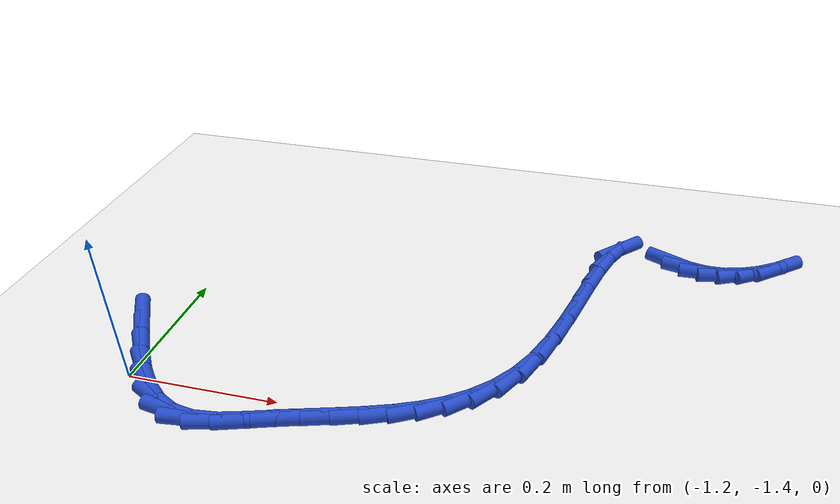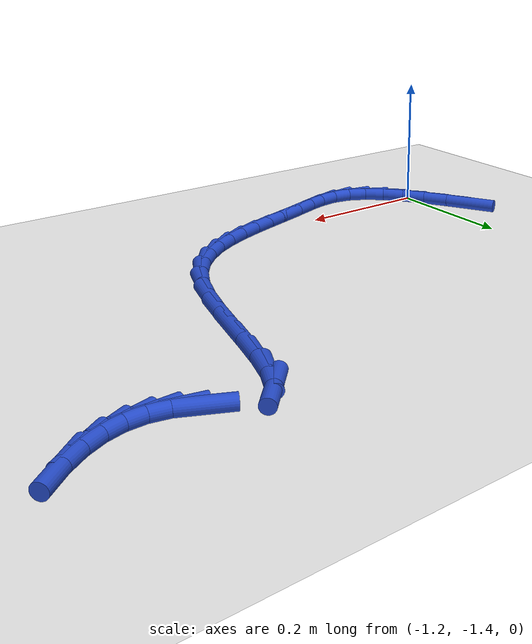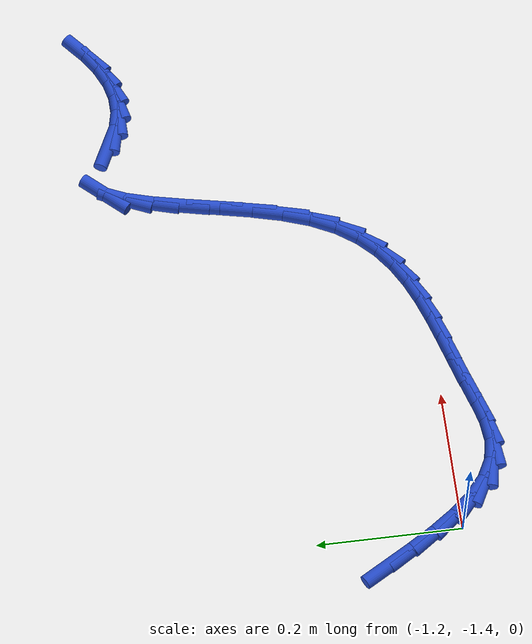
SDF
<sdf version="1.6">
 <world name="default">
  <model name="ground_plane">
   <static>1</static>
   <link name="link">
    <collision name="collision">
     <geometry><plane><normal>0 0 1</normal><size>100 100</size></plane></geometry>
     <surface><friction><ode><mu>100</mu><mu2>50</mu2></ode></friction></surface>
    </collision>
    <visual name="visual">
     <cast_shadows>0</cast_shadows>
     <geometry><plane><normal>0 0 1</normal><size>100 100</size></plane></geometry>
     <material>
      <script><uri>file://media/materials/scripts/gazebo.material</uri><name>Gazebo/WhiteGlow</name></script>
     </material>
    </visual>
   </link>
  </model>
  <model name="line">
   <link name="link_214">
    <pose>-1.2443468580853623 -1.2925656107177927 0.01 0 1.57 -1.0520000208945757</pose>
    <collision name="collision">
     <geometry><cylinder><radius>0.01</radius><length>0.08</length></cylinder></geometry>
    </collision>
    <visual name="visual">
     <material>
      <script><name>Gazebo/Blue</name><uri>file://media/materials/scripts/gazebo.material</uri></script>
     </material>
     <geometry><cylinder><radius>0.01</radius><length>0.08</length></cylinder></geometry>
    </visual>
   </link>
   <link name="link_215">
    <pose>-1.2244878646900907 -1.327347087991633 0.01 0 1.57 -1.0220573542712257</pose>
    <collision name="collision">
     <geometry><cylinder><radius>0.01</radius><length>0.08</length></cylinder></geometry>
    </collision>
    <visual name="visual">
     <material>
      <script><name>Gazebo/Blue</name><uri>file://media/materials/scripts/gazebo.material</uri></script>
     </material>
     <geometry><cylinder><radius>0.01</radius><length>0.08</length></cylinder></geometry>
    </visual>
   </link>
   <link name="link_216">
    <pose>-1.2039642703983682 -1.360916847192216 0.01 0 1.57 -0.9621575341787305</pose>
    <collision name="collision">
     <geometry><cylinder><radius>0.01</radius><length>0.08</length></cylinder></geometry>
    </collision>
    <visual name="visual">
     <material>
      <script><name>Gazebo/Blue</name><uri>file://media/materials/scripts/gazebo.material</uri></script>
     </material>
     <geometry><cylinder><radius>0.01</radius><length>0.08</length></cylinder></geometry>
    </visual>
   </link>
   <link name="link_217">
    <pose>-1.1824604280119746 -1.3917735089464258 0.01 0 1.57 -0.8629586434465176</pose>
    <collision name="collision">
     <geometry><cylinder><radius>0.01</radius><length>0.08</length></cylinder></geometry>
    </collision>
    <visual name="visual">
     <material>
      <script><name>Gazebo/Blue</name><uri>file://media/materials/scripts/gazebo.material</uri></script>
     </material>
     <geometry><cylinder><radius>0.01</radius><length>0.08</length></cylinder></geometry>
    </visual>
   </link>
   <link name="link_218">
    <pose>-1.159660690332693 -1.418415693881145 0.01 0 1.57 -0.7086823385976304</pose>
    <collision name="collision">
     <geometry><cylinder><radius>0.01</radius><length>0.08</length></cylinder></geometry>
    </collision>
    <visual name="visual">
     <material>
      <script><name>Gazebo/Blue</name><uri>file://media/materials/scripts/gazebo.material</uri></script>
     </material>
     <geometry><cylinder><radius>0.01</radius><length>0.08</length></cylinder></geometry>
    </visual>
   </link>
   <link name="link_219">
    <pose>-1.1352494101623036 -1.4393420226232576 0.01 0 1.57 -0.47991038683561255</pose>
    <collision name="collision">
     <geometry><cylinder><radius>0.01</radius><length>0.08</length></cylinder></geometry>
    </collision>
    <visual name="visual">
     <material>
      <script><name>Gazebo/Blue</name><uri>file://media/materials/scripts/gazebo.material</uri></script>
     </material>
     <geometry><cylinder><radius>0.01</radius><length>0.08</length></cylinder></geometry>
    </visual>
   </link>
   <link name="link_220">
    <pose>-1.1089109403025876 -1.453051115799647 0.01 0 1.57 -0.17378169590143974</pose>
    <collision name="collision">
     <geometry><cylinder><radius>0.01</radius><length>0.08</length></cylinder></geometry>
    </collision>
    <visual name="visual">
     <material>
      <script><name>Gazebo/Blue</name><uri>file://media/materials/scripts/gazebo.material</uri></script>
     </material>
     <geometry><cylinder><radius>0.01</radius><length>0.08</length></cylinder></geometry>
    </visual>
   </link>
   <link name="link_221">
    <pose>-1.080335374690896 -1.4580676277025666 0.01 0 1.57 0.11114146233360558</pose>
    <collision name="collision">
     <geometry><cylinder><radius>0.01</radius><length>0.08</length></cylinder></geometry>
    </collision>
    <visual name="visual">
     <material>
      <script><name>Gazebo/Blue</name><uri>file://media/materials/scripts/gazebo.material</uri></script>
     </material>
     <geometry><cylinder><radius>0.01</radius><length>0.08</length></cylinder></geometry>
    </visual>
   </link>
   <link name="link_222">
    <pose>-1.0495922105316546 -1.454636648864766 0.01 0 1.57 0.268583769737084</pose>
    <collision name="collision">
     <geometry><cylinder><radius>0.01</radius><length>0.08</length></cylinder></geometry>
    </collision>
    <visual name="visual">
     <material>
      <script><name>Gazebo/Blue</name><uri>file://media/materials/scripts/gazebo.material</uri></script>
     </material>
     <geometry><cylinder><radius>0.01</radius><length>0.08</length></cylinder></geometry>
    </visual>
   </link>
   <link name="link_223">
    <pose>-1.0173600391249404 -1.4457652585707046 0.01 0 1.57 0.32337973287237315</pose>
    <collision name="collision">
     <geometry><cylinder><radius>0.01</radius><length>0.08</length></cylinder></geometry>
    </collision>
    <visual name="visual">
     <material>
      <script><name>Gazebo/Blue</name><uri>file://media/materials/scripts/gazebo.material</uri></script>
     </material>
     <geometry><cylinder><radius>0.01</radius><length>0.08</length></cylinder></geometry>
    </visual>
   </link>
   <link name="link_224">
    <pose>-0.984372383019714 -1.4347096265042112 0.01 0 1.57 0.30777558076416256</pose>
    <collision name="collision">
     <geometry><cylinder><radius>0.01</radius><length>0.08</length></cylinder></geometry>
    </collision>
    <visual name="visual">
     <material>
      <script><name>Gazebo/Blue</name><uri>file://media/materials/scripts/gazebo.material</uri></script>
     </material>
     <geometry><cylinder><radius>0.01</radius><length>0.08</length></cylinder></geometry>
    </visual>
   </link>
   <link name="link_225">
    <pose>-0.9513136000003172 -1.4242010135802432 0.01 0 1.57 0.2947452781710585</pose>
    <collision name="collision">
     <geometry><cylinder><radius>0.01</radius><length>0.08</length></cylinder></geometry>
    </collision>
    <visual name="visual">
     <material>
      <script><name>Gazebo/Blue</name><uri>file://media/materials/scripts/gazebo.material</uri></script>
     </material>
     <geometry><cylinder><radius>0.01</radius><length>0.08</length></cylinder></geometry>
    </visual>
   </link>
   <link name="link_226">
    <pose>-0.9186154918224871 -1.4142742603185774 0.01 0 1.57 0.3079379933476518</pose>
    <collision name="collision">
     <geometry><cylinder><radius>0.01</radius><length>0.08</length></cylinder></geometry>
    </collision>
    <visual name="visual">
     <material>
      <script><name>Gazebo/Blue</name><uri>file://media/materials/scripts/gazebo.material</uri></script>
     </material>
     <geometry><cylinder><radius>0.01</radius><length>0.08</length></cylinder></geometry>
    </visual>
   </link>
   <link name="link_227">
    <pose>-0.8866289886526645 -1.4041007798087133 0.01 0 1.57 0.3488878752033335</pose>
    <collision name="collision">
     <geometry><cylinder><radius>0.01</radius><length>0.08</length></cylinder></geometry>
    </collision>
    <visual name="visual">
     <material>
      <script><name>Gazebo/Blue</name><uri>file://media/materials/scripts/gazebo.material</uri></script>
     </material>
     <geometry><cylinder><radius>0.01</radius><length>0.08</length></cylinder></geometry>
    </visual>
   </link>
   <link name="link_228">
    <pose>-0.8557049841187789 -1.3928515950359048 0.01 0 1.57 0.41930017318496743</pose>
    <collision name="collision">
     <geometry><cylinder><radius>0.01</radius><length>0.08</length></cylinder></geometry>
    </collision>
    <visual name="visual">
     <material>
      <script><name>Gazebo/Blue</name><uri>file://media/materials/scripts/gazebo.material</uri></script>
     </material>
     <geometry><cylinder><radius>0.01</radius><length>0.08</length></cylinder></geometry>
    </visual>
   </link>
   <link name="link_229">
    <pose>-0.8261943718487613 -1.3796977289854064 0.01 0 1.57 0.520028144597713</pose>
    <collision name="collision">
     <geometry><cylinder><radius>0.01</radius><length>0.08</length></cylinder></geometry>
    </collision>
    <visual name="visual">
     <material>
      <script><name>Gazebo/Blue</name><uri>file://media/materials/scripts/gazebo.material</uri></script>
     </material>
     <geometry><cylinder><radius>0.01</radius><length>0.08</length></cylinder></geometry>
    </visual>
   </link>
   <link name="link_230">
    <pose>-0.7984480454705416 -1.363810204642472 0.01 0 1.57 0.6491401952550524</pose>
    <collision name="collision">
     <geometry><cylinder><radius>0.01</radius><length>0.08</length></cylinder></geometry>
    </collision>
    <visual name="visual">
     <material>
      <script><name>Gazebo/Blue</name><uri>file://media/materials/scripts/gazebo.material</uri></script>
     </material>
     <geometry><cylinder><radius>0.01</radius><length>0.08</length></cylinder></geometry>
    </visual>
   </link>
   <link name="link_231">
    <pose>-0.7728168986120507 -1.3443600449923563 0.01 0 1.57 0.7997929076413817</pose>
    <collision name="collision">
     <geometry><cylinder><radius>0.01</radius><length>0.08</length></cylinder></geometry>
    </collision>
    <visual name="visual">
     <material>
      <script><name>Gazebo/Blue</name><uri>file://media/materials/scripts/gazebo.material</uri></script>
     </material>
     <geometry><cylinder><radius>0.01</radius><length>0.08</length></cylinder></geometry>
    </visual>
   </link>
   <link name="link_232">
    <pose>-0.7496518249012191 -1.3205182730203129 0.01 0 1.57 0.9599675125602726</pose>
    <collision name="collision">
     <geometry><cylinder><radius>0.01</radius><length>0.08</length></cylinder></geometry>
    </collision>
    <visual name="visual">
     <material>
      <script><name>Gazebo/Blue</name><uri>file://media/materials/scripts/gazebo.material</uri></script>
     </material>
     <geometry><cylinder><radius>0.01</radius><length>0.08</length></cylinder></geometry>
    </visual>
   </link>
   <link name="link_233">
    <pose>-0.7293037179659774 -1.2914559117115971 0.01 0 1.57 1.1157364135943553</pose>
    <collision name="collision">
     <geometry><cylinder><radius>0.01</radius><length>0.08</length></cylinder></geometry>
    </collision>
    <visual name="visual">
     <material>
      <script><name>Gazebo/Blue</name><uri>file://media/materials/scripts/gazebo.material</uri></script>
     </material>
     <geometry><cylinder><radius>0.01</radius><length>0.08</length></cylinder></geometry>
    </visual>
   </link>
   <link name="link_234">
    <pose>-0.7121232980769387 -1.2563444603344716 0.01 0 1.57 1.2451851881638327</pose>
    <collision name="collision">
     <geometry><cylinder><radius>0.01</radius><length>0.08</length></cylinder></geometry>
    </collision>
    <visual name="visual">
     <material>
      <script><name>Gazebo/Blue</name><uri>file://media/materials/scripts/gazebo.material</uri></script>
     </material>
     <geometry><cylinder><radius>0.01</radius><length>0.08</length></cylinder></geometry>
    </visual>
   </link>
   <link name="link_235">
    <pose>-0.6981942795265725 -1.2150889921044357 0.01 0 1.57 1.3241658768138695</pose>
    <collision name="collision">
     <geometry><cylinder><radius>0.01</radius><length>0.08</length></cylinder></geometry>
    </collision>
    <visual name="visual">
     <material>
      <script><name>Gazebo/Blue</name><uri>file://media/materials/scripts/gazebo.material</uri></script>
     </material>
     <geometry><cylinder><radius>0.01</radius><length>0.08</length></cylinder></geometry>
    </visual>
   </link>
   <link name="link_236">
    <pose>-0.68679461423054 -1.1698083369902612 0.01 0 1.57 1.3654053842207536</pose>
    <collision name="collision">
     <geometry><cylinder><radius>0.01</radius><length>0.08</length></cylinder></geometry>
    </collision>
    <visual name="visual">
     <material>
      <script><name>Gazebo/Blue</name><uri>file://media/materials/scripts/gazebo.material</uri></script>
     </material>
     <geometry><cylinder><radius>0.01</radius><length>0.08</length></cylinder></geometry>
    </visual>
   </link>
   <link name="link_237">
    <pose>-0.6770508588093376 -1.1230372693715462 0.01 0 1.57 1.3772739848945217</pose>
    <collision name="collision">
     <geometry><cylinder><radius>0.01</radius><length>0.08</length></cylinder></geometry>
    </collision>
    <visual name="visual">
     <material>
      <script><name>Gazebo/Blue</name><uri>file://media/materials/scripts/gazebo.material</uri></script>
     </material>
     <geometry><cylinder><radius>0.01</radius><length>0.08</length></cylinder></geometry>
    </visual>
   </link>
   <link name="link_238">
    <pose>-0.6680895698834614 -1.0773105636278886 0.01 0 1.57 1.3592347463419245</pose>
    <collision name="collision">
     <geometry><cylinder><radius>0.01</radius><length>0.08</length></cylinder></geometry>
    </collision>
    <visual name="visual">
     <material>
      <script><name>Gazebo/Blue</name><uri>file://media/materials/scripts/gazebo.material</uri></script>
     </material>
     <geometry><cylinder><radius>0.01</radius><length>0.08</length></cylinder></geometry>
    </visual>
   </link>
   <link name="link_239">
    <pose>-0.6590373040734084 -1.0351629941388871 0.01 0 1.57 1.2996604724831384</pose>
    <collision name="collision">
     <geometry><cylinder><radius>0.01</radius><length>0.08</length></cylinder></geometry>
    </collision>
    <visual name="visual">
     <material>
      <script><name>Gazebo/Blue</name><uri>file://media/materials/scripts/gazebo.material</uri></script>
     </material>
     <geometry><cylinder><radius>0.01</radius><length>0.08</length></cylinder></geometry>
    </visual>
   </link>
   <link name="link_240">
    <pose>-0.6490206179996751 -0.9991293352841402 0.01 0 1.57 1.1622658516607784</pose>
    <collision name="collision">
     <geometry><cylinder><radius>0.01</radius><length>0.08</length></cylinder></geometry>
    </collision>
    <visual name="visual">
     <material>
      <script><name>Gazebo/Blue</name><uri>file://media/materials/scripts/gazebo.material</uri></script>
     </material>
     <geometry><cylinder><radius>0.01</radius><length>0.08</length></cylinder></geometry>
    </visual>
   </link>
   <link name="link_241">
    <pose>-0.6371660682827576 -0.9717443614432454 0.01 0 1.57 0.8385102542164609</pose>
    <collision name="collision">
     <geometry><cylinder><radius>0.01</radius><length>0.08</length></cylinder></geometry>
    </collision>
    <visual name="visual">
     <material>
      <script><name>Gazebo/Blue</name><uri>file://media/materials/scripts/gazebo.material</uri></script>
     </material>
     <geometry><cylinder><radius>0.01</radius><length>0.08</length></cylinder></geometry>
    </visual>
   </link>
   <link name="link_245">
    <pose>-0.5568258197830035 -0.9853148207865038 0.01 0 1.57 -0.436430841294586</pose>
    <collision name="collision">
     <geometry><cylinder><radius>0.01</radius><length>0.08</length></cylinder></geometry>
    </collision>
    <visual name="visual">
     <material>
      <script><name>Gazebo/Blue</name><uri>file://media/materials/scripts/gazebo.material</uri></script>
     </material>
     <geometry><cylinder><radius>0.01</radius><length>0.08</length></cylinder></geometry>
    </visual>
   </link>
   <link name="link_246">
    <pose>-0.5317738211852405 -0.996999764774369 0.01 0 1.57 -0.2055190227165945</pose>
    <collision name="collision">
     <geometry><cylinder><radius>0.01</radius><length>0.08</length></cylinder></geometry>
    </collision>
    <visual name="visual">
     <material>
      <script><name>Gazebo/Blue</name><uri>file://media/materials/scripts/gazebo.material</uri></script>
     </material>
     <geometry><cylinder><radius>0.01</radius><length>0.08</length></cylinder></geometry>
    </visual>
   </link>
   <link name="link_247">
    <pose>-0.506753311214245 -1.0022155987363894 0.01 0 1.57 0.03306239752402364</pose>
    <collision name="collision">
     <geometry><cylinder><radius>0.01</radius><length>0.08</length></cylinder></geometry>
    </collision>
    <visual name="visual">
     <material>
      <script><name>Gazebo/Blue</name><uri>file://media/materials/scripts/gazebo.material</uri></script>
     </material>
     <geometry><cylinder><radius>0.01</radius><length>0.08</length></cylinder></geometry>
    </visual>
   </link>
   <link name="link_248">
    <pose>-0.48181317997193335 -1.0013907176157797 0.01 0 1.57 0.25385368418525145</pose>
    <collision name="collision">
     <geometry><cylinder><radius>0.01</radius><length>0.08</length></cylinder></geometry>
    </collision>
    <visual name="visual">
     <material>
      <script><name>Gazebo/Blue</name><uri>file://media/materials/scripts/gazebo.material</uri></script>
     </material>
     <geometry><cylinder><radius>0.01</radius><length>0.08</length></cylinder></geometry>
    </visual>
   </link>
   <link name="link_249">
    <pose>-0.4570023175602212 -0.9949535163557547 0.01 0 1.57 0.4408148272710819</pose>
    <collision name="collision">
     <geometry><cylinder><radius>0.01</radius><length>0.08</length></cylinder></geometry>
    </collision>
    <visual name="visual">
     <material>
      <script><name>Gazebo/Blue</name><uri>file://media/materials/scripts/gazebo.material</uri></script>
     </material>
     <geometry><cylinder><radius>0.01</radius><length>0.08</length></cylinder></geometry>
    </visual>
   </link>
   <link name="link_250">
    <pose>-0.43236961408102503 -0.9833323898995282 0.01 0 1.57 0.5910096757887614</pose>
    <collision name="collision">
     <geometry><cylinder><radius>0.01</radius><length>0.08</length></cylinder></geometry>
    </collision>
    <visual name="visual">
     <material>
      <script><name>Gazebo/Blue</name><uri>file://media/materials/scripts/gazebo.material</uri></script>
     </material>
     <geometry><cylinder><radius>0.01</radius><length>0.08</length></cylinder></geometry>
    </visual>
   </link>
   <link name="link_251">
    <pose>-0.4079639596362606 -0.9669557331903147 0.01 0 1.57 0.7091320268636448</pose>
    <collision name="collision">
     <geometry><cylinder><radius>0.01</radius><length>0.08</length></cylinder></geometry>
    </collision>
    <visual name="visual">
     <material>
      <script><name>Gazebo/Blue</name><uri>file://media/materials/scripts/gazebo.material</uri></script>
     </material>
     <geometry><cylinder><radius>0.01</radius><length>0.08</length></cylinder></geometry>
    </visual>
   </link>
  </model>
 </world>
</sdf>
